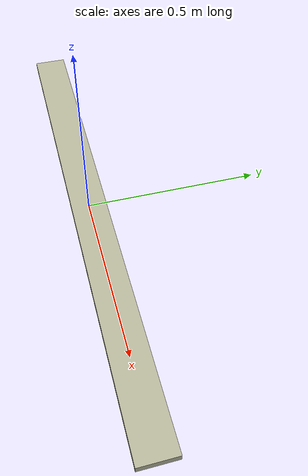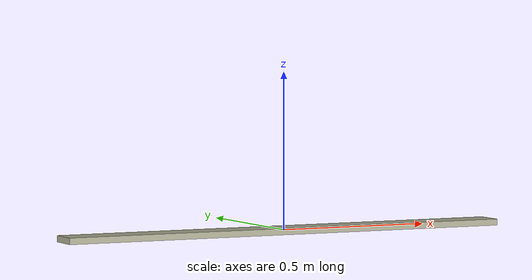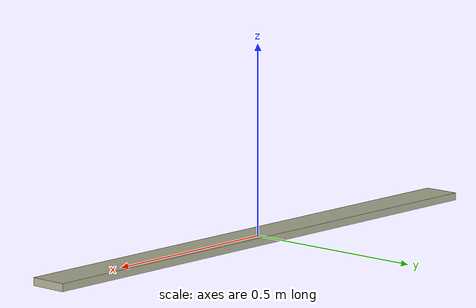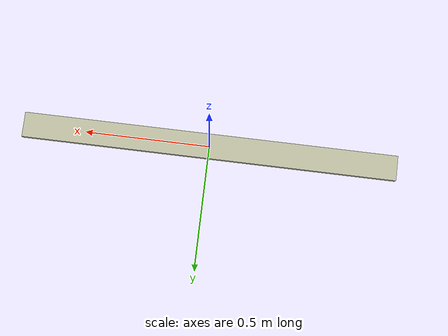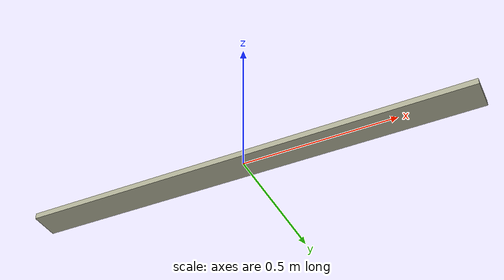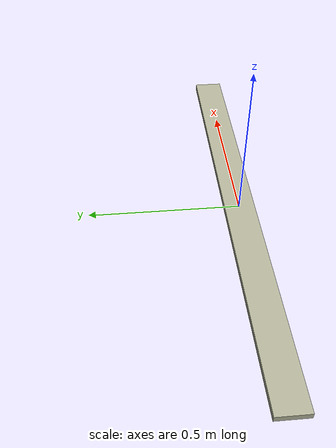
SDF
<?xml version='1.0'?>
<sdf version='1.7'>
  <model name='insets_pipe'>
    <static>true</static>
    <link name='insets_pipe'>

      <visual name='insets_pipe'>
        <geometry>
          <box>
            <size>0.1 1.5 0.02</size>
          </box>
        </geometry>
        <material>
          <script>
            <name>Gazebo/Grey</name>
            <uri>file://media/materials/scripts/gazebo.material</uri>
          </script>
          <shader type='pixel'>
            <normal_map>__default__</normal_map>
          </shader>
          <ambient>0 0 1 0</ambient>
          <diffuse>0.7 0.7 0.6 1</diffuse>
          <specular>0.01 0.01 0.01 1</specular>
          <emissive>0 0 1 1</emissive>
        </material>
        <pose>0 0 0 0 0 1.57</pose>
        <transparency>0</transparency>
        <cast_shadows>1</cast_shadows>
      </visual>

    </link>
  </model>
</sdf>
